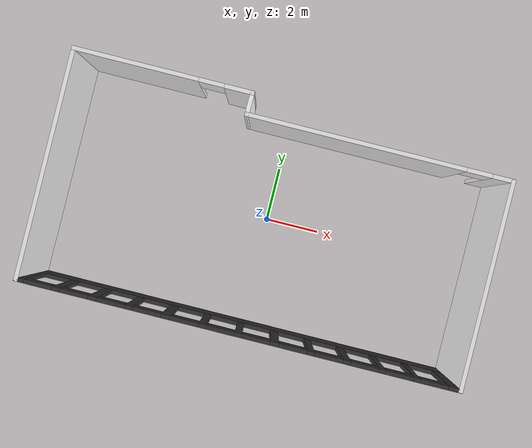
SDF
<sdf version='1.6'>
     <model name='lab_empty'>
      <pose frame=''>0.0 -0.0 0.01 0 -0 0</pose>
      <link name='Wall_10'>
        <pose frame=''>-4.66996 4.04955 0 0 -0 0</pose>
        <visual name='Wall_10_Visual_0'>
          <pose frame=''>-0.979064 0 1.5 0 -0 0</pose>
          <geometry>
            <box>
              <size>4.46087 0.15 3</size>
            </box>
          </geometry>
          <material>
          <script>
            <uri>file://final_project_world/materials/scripts</uri>
            <uri>file://final_project_world/materials/textures</uri>
            <name>Wall/Image</name>
          </script>
            <ambient>0.95 0.95 0.95 1</ambient>
          </material>
          <meta>
            <layer>0</layer>
          </meta>
        </visual>
        <collision name='Wall_10_Collision_0'>
          <geometry>
            <box>
              <size>4.46087 0.15 3</size>
            </box>
          </geometry>
          <pose frame=''>-0.979064 0 1.5 0 -0 0</pose>
          <max_contacts>10</max_contacts>
          <surface>
            <contact>
              <ode/>
            </contact>
            <bounce/>
            <friction>
              <torsional>
                <ode/>
              </torsional>
              <ode/>
            </friction>
          </surface>
        </collision>
        <visual name='Wall_10_Visual_1'>
          <pose frame=''>2.68044 0 1.5 0 -0 0</pose>
          <geometry>
            <box>
              <size>1.05813 0.15 3</size>
            </box>
          </geometry>
          <material>
          <script>
            <uri>file://final_project_world/materials/scripts</uri>
            <uri>file://final_project_world/materials/textures</uri>
            <name>Wall/Image</name>
          </script>
            <ambient>0.95 0.95 0.95 1</ambient>
          </material>
          <meta>
            <layer>0</layer>
          </meta>
        </visual>
        <collision name='Wall_10_Collision_1'>
          <geometry>
            <box>
              <size>1.05813 0.15 3</size>
            </box>
          </geometry>
          <pose frame=''>2.68044 0 1.5 0 -0 0</pose>
          <max_contacts>10</max_contacts>
          <surface>
            <contact>
              <ode/>
            </contact>
            <bounce/>
            <friction>
              <torsional>
                <ode/>
              </torsional>
              <ode/>
            </friction>
          </surface>
        </collision>
        <visual name='Wall_10_Visual_2'>
          <pose frame=''>1.70137 0 2.5 0 -0 0</pose>
          <geometry>
            <box>
              <size>0.9 0.15 1</size>
            </box>
          </geometry>
          <material>
          <script>
            <uri>file://final_project_world/materials/scripts</uri>
            <uri>file://final_project_world/materials/textures</uri>
            <name>Wall/Image</name>
          </script>
            <ambient>0.95 0.95 0.95 1</ambient>
          </material>
          <meta>
            <layer>0</layer>
          </meta>
        </visual>
        <collision name='Wall_10_Collision_2'>
          <geometry>
            <box>
              <size>0.9 0.15 1</size>
            </box>
          </geometry>
          <pose frame=''>1.70137 0 2.5 0 -0 0</pose>
          <max_contacts>10</max_contacts>
          <surface>
            <contact>
              <ode/>
            </contact>
            <bounce/>
            <friction>
              <torsional>
                <ode/>
              </torsional>
              <ode/>
            </friction>
          </surface>
        </collision>
        <self_collide>0</self_collide>
        <enable_wind>0</enable_wind>
        <kinematic>0</kinematic>
      </link>
      <link name='Wall_13'>
        <collision name='Wall_13_Collision'>
          <geometry>
            <box>
              <size>0.900067 0.15 3</size>
            </box>
          </geometry>
          <pose frame=''>0 0 1.5 0 -0 0</pose>
          <max_contacts>10</max_contacts>
          <surface>
            <contact>
              <ode/>
            </contact>
            <bounce/>
            <friction>
              <torsional>
                <ode/>
              </torsional>
              <ode/>
            </friction>
          </surface>
        </collision>
        <visual name='Wall_13_Visual'>
          <pose frame=''>0 0 1.5 0 -0 0</pose>
          <geometry>
            <box>
              <size>0.900067 0.15 3</size>
            </box>
          </geometry>
          <material>
          <script>
            <uri>file://final_project_world/materials/scripts</uri>
            <uri>file://final_project_world/materials/textures</uri>
            <name>Wall/Image</name>
          </script>
            <ambient>1 1 1 1</ambient>
          </material>
          <meta>
            <layer>0</layer>
          </meta>
        </visual>
        <pose frame=''>-1.54046 3.67455 0 0 -0 -1.58413</pose>
        <self_collide>0</self_collide>
        <enable_wind>0</enable_wind>
        <kinematic>0</kinematic>
      </link>
      <link name='Wall_15'>
        <pose frame=''>0.004542 -4.05046 0 0 -0 0</pose>
        <visual name='Wall_15_Visual_0'>
          <pose frame=''>-7.70321 0 1.5 0 -0 0</pose>
          <geometry>
            <box>
              <size>0.343585 0.15 3</size>
            </box>
          </geometry>
          <material>
          <script>
            <uri>file://final_project_world/materials/scripts</uri>
            <uri>file://final_project_world/materials/textures</uri>
            <name>Wall/Image</name>
          </script>
            <ambient>0.2 0.2 0.2 1</ambient>
          </material>
          <meta>
            <layer>0</layer>
          </meta>
        </visual>
        <collision name='Wall_15_Collision_0'>
          <geometry>
            <box>
              <size>0.343585 0.15 3</size>
            </box>
          </geometry>
          <pose frame=''>-7.70321 0 1.5 0 -0 0</pose>
          <max_contacts>10</max_contacts>
          <surface>
            <contact>
              <ode/>
            </contact>
            <bounce/>
            <friction>
              <torsional>
                <ode/>
              </torsional>
              <ode/>
            </friction>
          </surface>
        </collision>
        <visual name='Wall_15_Visual_1'>
          <pose frame=''>0.171792 0 0.4 0 -0 0</pose>
          <geometry>
            <box>
              <size>15.4064 0.15 0.8</size>
            </box>
          </geometry>
          <material>
          <script>
            <uri>file://final_project_world/materials/scripts</uri>
            <uri>file://final_project_world/materials/textures</uri>
            <name>Wall/Image</name>
          </script>
            <ambient>0.2 0.2 0.2 1</ambient>
          </material>
          <meta>
            <layer>0</layer>
          </meta>
        </visual>
        <collision name='Wall_15_Collision_1'>
          <geometry>
            <box>
              <size>15.4064 0.15 0.8</size>
            </box>
          </geometry>
          <pose frame=''>0.171792 0 0.4 0 -0 0</pose>
          <max_contacts>10</max_contacts>
          <surface>
            <contact>
              <ode/>
            </contact>
            <bounce/>
            <friction>
              <torsional>
                <ode/>
              </torsional>
              <ode/>
            </friction>
          </surface>
        </collision>
        <visual name='Wall_15_Visual_2'>
          <pose frame=''>-6.39989 0 1.9 0 -0 0</pose>
          <geometry>
            <box>
              <size>0.263044 0.15 2.2</size>
            </box>
          </geometry>
          <material>
          <script>
            <uri>file://final_project_world/materials/scripts</uri>
            <uri>file://final_project_world/materials/textures</uri>
            <name>Wall/Image</name>
          </script>
            <ambient>0.2 0.2 0.2 1</ambient>
          </material>
          <meta>
            <layer>0</layer>
          </meta>
        </visual>
        <collision name='Wall_15_Collision_2'>
          <geometry>
            <box>
              <size>0.263044 0.15 2.2</size>
            </box>
          </geometry>
          <pose frame=''>-6.39989 0 1.9 0 -0 0</pose>
          <max_contacts>10</max_contacts>
          <surface>
            <contact>
              <ode/>
            </contact>
            <bounce/>
            <friction>
              <torsional>
                <ode/>
              </torsional>
              <ode/>
            </friction>
          </surface>
        </collision>
        <visual name='Wall_15_Visual_3'>
          <pose frame=''>-5.12163 0 1.9 0 -0 0</pose>
          <geometry>
            <box>
              <size>0.293478 0.15 2.2</size>
            </box>
          </geometry>
          <material>
          <script>
            <uri>file://final_project_world/materials/scripts</uri>
            <uri>file://final_project_world/materials/textures</uri>
            <name>Wall/Image</name>
          </script>
            <ambient>0.2 0.2 0.2 1</ambient>
          </material>
          <meta>
            <layer>0</layer>
          </meta>
        </visual>
        <collision name='Wall_15_Collision_3'>
          <geometry>
            <box>
              <size>0.293478 0.15 2.2</size>
            </box>
          </geometry>
          <pose frame=''>-5.12163 0 1.9 0 -0 0</pose>
          <max_contacts>10</max_contacts>
          <surface>
            <contact>
              <ode/>
            </contact>
            <bounce/>
            <friction>
              <torsional>
                <ode/>
              </torsional>
              <ode/>
            </friction>
          </surface>
        </collision>
        <visual name='Wall_15_Visual_4'>
          <pose frame=''>-3.84337 0 1.9 0 -0 0</pose>
          <geometry>
            <box>
              <size>0.263043 0.15 2.2</size>
            </box>
          </geometry>
          <material>
          <script>
            <uri>file://final_project_world/materials/scripts</uri>
            <uri>file://final_project_world/materials/textures</uri>
            <name>Wall/Image</name>
          </script>
            <ambient>0.2 0.2 0.2 1</ambient>
          </material>
          <meta>
            <layer>0</layer>
          </meta>
        </visual>
        <collision name='Wall_15_Collision_4'>
          <geometry>
            <box>
              <size>0.263043 0.15 2.2</size>
            </box>
          </geometry>
          <pose frame=''>-3.84337 0 1.9 0 -0 0</pose>
          <max_contacts>10</max_contacts>
          <surface>
            <contact>
              <ode/>
            </contact>
            <bounce/>
            <friction>
              <torsional>
                <ode/>
              </torsional>
              <ode/>
            </friction>
          </surface>
        </collision>
        <visual name='Wall_15_Visual_5'>
          <pose frame=''>-2.5575 0 1.9 0 -0 0</pose>
          <geometry>
            <box>
              <size>0.308696 0.15 2.2</size>
            </box>
          </geometry>
          <material>
          <script>
            <uri>file://final_project_world/materials/scripts</uri>
            <uri>file://final_project_world/materials/textures</uri>
            <name>Wall/Image</name>
          </script>
            <ambient>0.2 0.2 0.2 1</ambient>
          </material>
          <meta>
            <layer>0</layer>
          </meta>
        </visual>
        <collision name='Wall_15_Collision_5'>
          <geometry>
            <box>
              <size>0.308696 0.15 2.2</size>
            </box>
          </geometry>
          <pose frame=''>-2.5575 0 1.9 0 -0 0</pose>
          <max_contacts>10</max_contacts>
          <surface>
            <contact>
              <ode/>
            </contact>
            <bounce/>
            <friction>
              <torsional>
                <ode/>
              </torsional>
              <ode/>
            </friction>
          </surface>
        </collision>
        <visual name='Wall_15_Visual_6'>
          <pose frame=''>-1.27163 0 1.9 0 -0 0</pose>
          <geometry>
            <box>
              <size>0.263044 0.15 2.2</size>
            </box>
          </geometry>
          <material>
          <script>
            <uri>file://final_project_world/materials/scripts</uri>
            <uri>file://final_project_world/materials/textures</uri>
            <name>Wall/Image</name>
          </script>
            <ambient>0.2 0.2 0.2 1</ambient>
          </material>
          <meta>
            <layer>0</layer>
          </meta>
        </visual>
        <collision name='Wall_15_Collision_6'>
          <geometry>
            <box>
              <size>0.263044 0.15 2.2</size>
            </box>
          </geometry>
          <pose frame=''>-1.27163 0 1.9 0 -0 0</pose>
          <max_contacts>10</max_contacts>
          <surface>
            <contact>
              <ode/>
            </contact>
            <bounce/>
            <friction>
              <torsional>
                <ode/>
              </torsional>
              <ode/>
            </friction>
          </surface>
        </collision>
        <visual name='Wall_15_Visual_7'>
          <pose frame=''>-0.008589 0 1.9 0 -0 0</pose>
          <geometry>
            <box>
              <size>0.263043 0.15 2.2</size>
            </box>
          </geometry>
          <material>
          <script>
            <uri>file://final_project_world/materials/scripts</uri>
            <uri>file://final_project_world/materials/textures</uri>
            <name>Wall/Image</name>
          </script>
            <ambient>0.2 0.2 0.2 1</ambient>
          </material>
          <meta>
            <layer>0</layer>
          </meta>
        </visual>
        <collision name='Wall_15_Collision_7'>
          <geometry>
            <box>
              <size>0.263043 0.15 2.2</size>
            </box>
          </geometry>
          <pose frame=''>-0.008589 0 1.9 0 -0 0</pose>
          <max_contacts>10</max_contacts>
          <surface>
            <contact>
              <ode/>
            </contact>
            <bounce/>
            <friction>
              <torsional>
                <ode/>
              </torsional>
              <ode/>
            </friction>
          </surface>
        </collision>
        <visual name='Wall_15_Visual_8'>
          <pose frame=''>1.26967 0 1.9 0 -0 0</pose>
          <geometry>
            <box>
              <size>0.293478 0.15 2.2</size>
            </box>
          </geometry>
          <material>
          <script>
            <uri>file://final_project_world/materials/scripts</uri>
            <uri>file://final_project_world/materials/textures</uri>
            <name>Wall/Image</name>
          </script>
            <ambient>0.2 0.2 0.2 1</ambient>
          </material>
          <meta>
            <layer>0</layer>
          </meta>
        </visual>
        <collision name='Wall_15_Collision_8'>
          <geometry>
            <box>
              <size>0.293478 0.15 2.2</size>
            </box>
          </geometry>
          <pose frame=''>1.26967 0 1.9 0 -0 0</pose>
          <max_contacts>10</max_contacts>
          <surface>
            <contact>
              <ode/>
            </contact>
            <bounce/>
            <friction>
              <torsional>
                <ode/>
              </torsional>
              <ode/>
            </friction>
          </surface>
        </collision>
        <visual name='Wall_15_Visual_9'>
          <pose frame=''>2.54032 0 1.9 0 -0 0</pose>
          <geometry>
            <box>
              <size>0.247826 0.15 2.2</size>
            </box>
          </geometry>
          <material>
          <script>
            <uri>file://final_project_world/materials/scripts</uri>
            <uri>file://final_project_world/materials/textures</uri>
            <name>Wall/Image</name>
          </script>
            <ambient>0.2 0.2 0.2 1</ambient>
          </material>
          <meta>
            <layer>0</layer>
          </meta>
        </visual>
        <collision name='Wall_15_Collision_9'>
          <geometry>
            <box>
              <size>0.247826 0.15 2.2</size>
            </box>
          </geometry>
          <pose frame=''>2.54032 0 1.9 0 -0 0</pose>
          <max_contacts>10</max_contacts>
          <surface>
            <contact>
              <ode/>
            </contact>
            <bounce/>
            <friction>
              <torsional>
                <ode/>
              </torsional>
              <ode/>
            </friction>
          </surface>
        </collision>
        <visual name='Wall_15_Visual_10'>
          <pose frame=''>3.80337 0 1.9 0 -0 0</pose>
          <geometry>
            <box>
              <size>0.278261 0.15 2.2</size>
            </box>
          </geometry>
          <material>
          <script>
            <uri>file://final_project_world/materials/scripts</uri>
            <uri>file://final_project_world/materials/textures</uri>
            <name>Wall/Image</name>
          </script>
            <ambient>0.2 0.2 0.2 1</ambient>
          </material>
          <meta>
            <layer>0</layer>
          </meta>
        </visual>
        <collision name='Wall_15_Collision_10'>
          <geometry>
            <box>
              <size>0.278261 0.15 2.2</size>
            </box>
          </geometry>
          <pose frame=''>3.80337 0 1.9 0 -0 0</pose>
          <max_contacts>10</max_contacts>
          <surface>
            <contact>
              <ode/>
            </contact>
            <bounce/>
            <friction>
              <torsional>
                <ode/>
              </torsional>
              <ode/>
            </friction>
          </surface>
        </collision>
        <visual name='Wall_15_Visual_11'>
          <pose frame=''>5.05119 0 1.9 0 -0 0</pose>
          <geometry>
            <box>
              <size>0.217391 0.15 2.2</size>
            </box>
          </geometry>
          <material>
          <script>
            <uri>file://final_project_world/materials/scripts</uri>
            <uri>file://final_project_world/materials/textures</uri>
            <name>Wall/Image</name>
          </script>
            <ambient>0.2 0.2 0.2 1</ambient>
          </material>
          <meta>
            <layer>0</layer>
          </meta>
        </visual>
        <collision name='Wall_15_Collision_11'>
          <geometry>
            <box>
              <size>0.217391 0.15 2.2</size>
            </box>
          </geometry>
          <pose frame=''>5.05119 0 1.9 0 -0 0</pose>
          <max_contacts>10</max_contacts>
          <surface>
            <contact>
              <ode/>
            </contact>
            <bounce/>
            <friction>
              <torsional>
                <ode/>
              </torsional>
              <ode/>
            </friction>
          </surface>
        </collision>
        <visual name='Wall_15_Visual_12'>
          <pose frame=''>6.26858 0 1.9 0 -0 0</pose>
          <geometry>
            <box>
              <size>0.217391 0.15 2.2</size>
            </box>
          </geometry>
          <material>
          <script>
            <uri>file://final_project_world/materials/scripts</uri>
            <uri>file://final_project_world/materials/textures</uri>
            <name>Wall/Image</name>
          </script>
            <ambient>0.2 0.2 0.2 1</ambient>
          </material>
          <meta>
            <layer>0</layer>
          </meta>
        </visual>
        <collision name='Wall_15_Collision_12'>
          <geometry>
            <box>
              <size>0.217391 0.15 2.2</size>
            </box>
          </geometry>
          <pose frame=''>6.26858 0 1.9 0 -0 0</pose>
          <max_contacts>10</max_contacts>
          <surface>
            <contact>
              <ode/>
            </contact>
            <bounce/>
            <friction>
              <torsional>
                <ode/>
              </torsional>
              <ode/>
            </friction>
          </surface>
        </collision>
        <visual name='Wall_15_Visual_13'>
          <pose frame=''>7.62614 0 1.9 0 -0 0</pose>
          <geometry>
            <box>
              <size>0.497719 0.15 2.2</size>
            </box>
          </geometry>
          <material>
          <script>
            <uri>file://final_project_world/materials/scripts</uri>
            <uri>file://final_project_world/materials/textures</uri>
            <name>Wall/Image</name>
          </script>
            <ambient>0.2 0.2 0.2 1</ambient>
          </material>
          <meta>
            <layer>0</layer>
          </meta>
        </visual>
        <collision name='Wall_15_Collision_13'>
          <geometry>
            <box>
              <size>0.497719 0.15 2.2</size>
            </box>
          </geometry>
          <pose frame=''>7.62614 0 1.9 0 -0 0</pose>
          <max_contacts>10</max_contacts>
          <surface>
            <contact>
              <ode/>
            </contact>
            <bounce/>
            <friction>
              <torsional>
                <ode/>
              </torsional>
              <ode/>
            </friction>
          </surface>
        </collision>
        <visual name='Wall_15_Visual_14'>
          <pose frame=''>-7.03141 0 2.8 0 -0 0</pose>
          <geometry>
            <box>
              <size>1 0.15 0.4</size>
            </box>
          </geometry>
          <material>
          <script>
            <uri>file://final_project_world/materials/scripts</uri>
            <uri>file://final_project_world/materials/textures</uri>
            <name>Wall/Image</name>
          </script>
            <ambient>0.2 0.2 0.2 1</ambient>
          </material>
          <meta>
            <layer>0</layer>
          </meta>
        </visual>
        <collision name='Wall_15_Collision_14'>
          <geometry>
            <box>
              <size>1 0.15 0.4</size>
            </box>
          </geometry>
          <pose frame=''>-7.03141 0 2.8 0 -0 0</pose>
          <max_contacts>10</max_contacts>
          <surface>
            <contact>
              <ode/>
            </contact>
            <bounce/>
            <friction>
              <torsional>
                <ode/>
              </torsional>
              <ode/>
            </friction>
          </surface>
        </collision>
        <visual name='Wall_15_Visual_15'>
          <pose frame=''>-5.76837 0 2.8 0 -0 0</pose>
          <geometry>
            <box>
              <size>1 0.15 0.4</size>
            </box>
          </geometry>
          <material>
          <script>
            <uri>file://final_project_world/materials/scripts</uri>
            <uri>file://final_project_world/materials/textures</uri>
            <name>Wall/Image</name>
          </script>
            <ambient>0.2 0.2 0.2 1</ambient>
          </material>
          <meta>
            <layer>0</layer>
          </meta>
        </visual>
        <collision name='Wall_15_Collision_15'>
          <geometry>
            <box>
              <size>1 0.15 0.4</size>
            </box>
          </geometry>
          <pose frame=''>-5.76837 0 2.8 0 -0 0</pose>
          <max_contacts>10</max_contacts>
          <surface>
            <contact>
              <ode/>
            </contact>
            <bounce/>
            <friction>
              <torsional>
                <ode/>
              </torsional>
              <ode/>
            </friction>
          </surface>
        </collision>
        <visual name='Wall_15_Visual_16'>
          <pose frame=''>-4.47489 0 2.8 0 -0 0</pose>
          <geometry>
            <box>
              <size>1 0.15 0.4</size>
            </box>
          </geometry>
          <material>
          <script>
            <uri>file://final_project_world/materials/scripts</uri>
            <uri>file://final_project_world/materials/textures</uri>
            <name>Wall/Image</name>
          </script>
            <ambient>0.2 0.2 0.2 1</ambient>
          </material>
          <meta>
            <layer>0</layer>
          </meta>
        </visual>
        <collision name='Wall_15_Collision_16'>
          <geometry>
            <box>
              <size>1 0.15 0.4</size>
            </box>
          </geometry>
          <pose frame=''>-4.47489 0 2.8 0 -0 0</pose>
          <max_contacts>10</max_contacts>
          <surface>
            <contact>
              <ode/>
            </contact>
            <bounce/>
            <friction>
              <torsional>
                <ode/>
              </torsional>
              <ode/>
            </friction>
          </surface>
        </collision>
        <visual name='Wall_15_Visual_17'>
          <pose frame=''>-3.21185 0 2.8 0 -0 0</pose>
          <geometry>
            <box>
              <size>1 0.15 0.4</size>
            </box>
          </geometry>
          <material>
          <script>
            <uri>file://final_project_world/materials/scripts</uri>
            <uri>file://final_project_world/materials/textures</uri>
            <name>Wall/Image</name>
          </script>
            <ambient>0.2 0.2 0.2 1</ambient>
          </material>
          <meta>
            <layer>0</layer>
          </meta>
        </visual>
        <collision name='Wall_15_Collision_17'>
          <geometry>
            <box>
              <size>1 0.15 0.4</size>
            </box>
          </geometry>
          <pose frame=''>-3.21185 0 2.8 0 -0 0</pose>
          <max_contacts>10</max_contacts>
          <surface>
            <contact>
              <ode/>
            </contact>
            <bounce/>
            <friction>
              <torsional>
                <ode/>
              </torsional>
              <ode/>
            </friction>
          </surface>
        </collision>
        <visual name='Wall_15_Visual_18'>
          <pose frame=''>-1.90315 0 2.8 0 -0 0</pose>
          <geometry>
            <box>
              <size>1 0.15 0.4</size>
            </box>
          </geometry>
          <material>
          <script>
            <uri>file://final_project_world/materials/scripts</uri>
            <uri>file://final_project_world/materials/textures</uri>
            <name>Wall/Image</name>
          </script>
            <ambient>0.2 0.2 0.2 1</ambient>
          </material>
          <meta>
            <layer>0</layer>
          </meta>
        </visual>
        <collision name='Wall_15_Collision_18'>
          <geometry>
            <box>
              <size>1 0.15 0.4</size>
            </box>
          </geometry>
          <pose frame=''>-1.90315 0 2.8 0 -0 0</pose>
          <max_contacts>10</max_contacts>
          <surface>
            <contact>
              <ode/>
            </contact>
            <bounce/>
            <friction>
              <torsional>
                <ode/>
              </torsional>
              <ode/>
            </friction>
          </surface>
        </collision>
        <visual name='Wall_15_Visual_19'>
          <pose frame=''>-0.640111 0 2.8 0 -0 0</pose>
          <geometry>
            <box>
              <size>1 0.15 0.4</size>
            </box>
          </geometry>
          <material>
          <script>
            <uri>file://final_project_world/materials/scripts</uri>
            <uri>file://final_project_world/materials/textures</uri>
            <name>Wall/Image</name>
          </script>
            <ambient>0.2 0.2 0.2 1</ambient>
          </material>
          <meta>
            <layer>0</layer>
          </meta>
        </visual>
        <collision name='Wall_15_Collision_19'>
          <geometry>
            <box>
              <size>1 0.15 0.4</size>
            </box>
          </geometry>
          <pose frame=''>-0.640111 0 2.8 0 -0 0</pose>
          <max_contacts>10</max_contacts>
          <surface>
            <contact>
              <ode/>
            </contact>
            <bounce/>
            <friction>
              <torsional>
                <ode/>
              </torsional>
              <ode/>
            </friction>
          </surface>
        </collision>
        <visual name='Wall_15_Visual_20'>
          <pose frame=''>0.622933 0 2.8 0 -0 0</pose>
          <geometry>
            <box>
              <size>1 0.15 0.4</size>
            </box>
          </geometry>
          <material>
          <script>
            <uri>file://final_project_world/materials/scripts</uri>
            <uri>file://final_project_world/materials/textures</uri>
            <name>Wall/Image</name>
          </script>
            <ambient>0.2 0.2 0.2 1</ambient>
          </material>
          <meta>
            <layer>0</layer>
          </meta>
        </visual>
        <collision name='Wall_15_Collision_20'>
          <geometry>
            <box>
              <size>1 0.15 0.4</size>
            </box>
          </geometry>
          <pose frame=''>0.622933 0 2.8 0 -0 0</pose>
          <max_contacts>10</max_contacts>
          <surface>
            <contact>
              <ode/>
            </contact>
            <bounce/>
            <friction>
              <torsional>
                <ode/>
              </torsional>
              <ode/>
            </friction>
          </surface>
        </collision>
        <visual name='Wall_15_Visual_21'>
          <pose frame=''>1.91641 0 2.8 0 -0 0</pose>
          <geometry>
            <box>
              <size>1 0.15 0.4</size>
            </box>
          </geometry>
          <material>
          <script>
            <uri>file://final_project_world/materials/scripts</uri>
            <uri>file://final_project_world/materials/textures</uri>
            <name>Wall/Image</name>
          </script>
            <ambient>0.2 0.2 0.2 1</ambient>
          </material>
          <meta>
            <layer>0</layer>
          </meta>
        </visual>
        <collision name='Wall_15_Collision_21'>
          <geometry>
            <box>
              <size>1 0.15 0.4</size>
            </box>
          </geometry>
          <pose frame=''>1.91641 0 2.8 0 -0 0</pose>
          <max_contacts>10</max_contacts>
          <surface>
            <contact>
              <ode/>
            </contact>
            <bounce/>
            <friction>
              <torsional>
                <ode/>
              </torsional>
              <ode/>
            </friction>
          </surface>
        </collision>
        <visual name='Wall_15_Visual_22'>
          <pose frame=''>3.16424 0 2.8 0 -0 0</pose>
          <geometry>
            <box>
              <size>1 0.15 0.4</size>
            </box>
          </geometry>
          <material>
          <script>
            <uri>file://final_project_world/materials/scripts</uri>
            <uri>file://final_project_world/materials/textures</uri>
            <name>Wall/Image</name>
          </script>
            <ambient>0.2 0.2 0.2 1</ambient>
          </material>
          <meta>
            <layer>0</layer>
          </meta>
        </visual>
        <collision name='Wall_15_Collision_22'>
          <geometry>
            <box>
              <size>1 0.15 0.4</size>
            </box>
          </geometry>
          <pose frame=''>3.16424 0 2.8 0 -0 0</pose>
          <max_contacts>10</max_contacts>
          <surface>
            <contact>
              <ode/>
            </contact>
            <bounce/>
            <friction>
              <torsional>
                <ode/>
              </torsional>
              <ode/>
            </friction>
          </surface>
        </collision>
        <visual name='Wall_15_Visual_23'>
          <pose frame=''>4.4425 0 2.8 0 -0 0</pose>
          <geometry>
            <box>
              <size>1 0.15 0.4</size>
            </box>
          </geometry>
          <material>
          <script>
            <uri>file://final_project_world/materials/scripts</uri>
            <uri>file://final_project_world/materials/textures</uri>
            <name>Wall/Image</name>
          </script>
            <ambient>0.2 0.2 0.2 1</ambient>
          </material>
          <meta>
            <layer>0</layer>
          </meta>
        </visual>
        <collision name='Wall_15_Collision_23'>
          <geometry>
            <box>
              <size>1 0.15 0.4</size>
            </box>
          </geometry>
          <pose frame=''>4.4425 0 2.8 0 -0 0</pose>
          <max_contacts>10</max_contacts>
          <surface>
            <contact>
              <ode/>
            </contact>
            <bounce/>
            <friction>
              <torsional>
                <ode/>
              </torsional>
              <ode/>
            </friction>
          </surface>
        </collision>
        <visual name='Wall_15_Visual_24'>
          <pose frame=''>5.65989 0 2.8 0 -0 0</pose>
          <geometry>
            <box>
              <size>1 0.15 0.4</size>
            </box>
          </geometry>
          <material>
          <script>
            <uri>file://final_project_world/materials/scripts</uri>
            <uri>file://final_project_world/materials/textures</uri>
            <name>Wall/Image</name>
          </script>
            <ambient>0.2 0.2 0.2 1</ambient>
          </material>
          <meta>
            <layer>0</layer>
          </meta>
        </visual>
        <collision name='Wall_15_Collision_24'>
          <geometry>
            <box>
              <size>1 0.15 0.4</size>
            </box>
          </geometry>
          <pose frame=''>5.65989 0 2.8 0 -0 0</pose>
          <max_contacts>10</max_contacts>
          <surface>
            <contact>
              <ode/>
            </contact>
            <bounce/>
            <friction>
              <torsional>
                <ode/>
              </torsional>
              <ode/>
            </friction>
          </surface>
        </collision>
        <visual name='Wall_15_Visual_25'>
          <pose frame=''>6.87728 0 2.8 0 -0 0</pose>
          <geometry>
            <box>
              <size>1 0.15 0.4</size>
            </box>
          </geometry>
          <material>
          <script>
            <uri>file://final_project_world/materials/scripts</uri>
            <uri>file://final_project_world/materials/textures</uri>
            <name>Wall/Image</name>
          </script>
            <ambient>0.2 0.2 0.2 1</ambient>
          </material>
          <meta>
            <layer>0</layer>
          </meta>
        </visual>
        <collision name='Wall_15_Collision_25'>
          <geometry>
            <box>
              <size>1 0.15 0.4</size>
            </box>
          </geometry>
          <pose frame=''>6.87728 0 2.8 0 -0 0</pose>
          <max_contacts>10</max_contacts>
          <surface>
            <contact>
              <ode/>
            </contact>
            <bounce/>
            <friction>
              <torsional>
                <ode/>
              </torsional>
              <ode/>
            </friction>
          </surface>
        </collision>
        <self_collide>0</self_collide>
        <enable_wind>0</enable_wind>
        <kinematic>0</kinematic>
      </link>
      <link name='Wall_17'>
        <collision name='Wall_17_Collision'>
          <geometry>
            <box>
              <size>8.25 0.15 3</size>
            </box>
          </geometry>
          <pose frame=''>0 0 1.5 0 -0 0</pose>
          <max_contacts>10</max_contacts>
          <surface>
            <contact>
              <ode/>
            </contact>
            <bounce/>
            <friction>
              <torsional>
                <ode/>
              </torsional>
              <ode/>
            </friction>
          </surface>
        </collision>
        <visual name='Wall_17_Visual'>
          <pose frame=''>0 0 1.5 0 -0 0</pose>
          <geometry>
            <box>
              <size>8.25 0.15 3</size>
            </box>
          </geometry>
          <material>
          <script>
            <uri>file://final_project_world/materials/scripts</uri>
            <uri>file://final_project_world/materials/textures</uri>
            <name>Wall/Image</name>
          </script>
            <ambient>0.95 0.95 0.95 1</ambient>
          </material>
          <meta>
            <layer>0</layer>
          </meta>
        </visual>
        <pose frame=''>-7.79996 -0.000455 0 0 -0 -1.56968</pose>
        <self_collide>0</self_collide>
        <enable_wind>0</enable_wind>
        <kinematic>0</kinematic>
      </link>
      <link name='Wall_2'>
        <collision name='Wall_2_Collision'>
          <geometry>
            <box>
              <size>7.5 0.15 3</size>
            </box>
          </geometry>
          <pose frame=''>0 0 1.5 0 -0 0</pose>
          <max_contacts>10</max_contacts>
          <surface>
            <contact>
              <ode/>
            </contact>
            <bounce/>
            <friction>
              <torsional>
                <ode/>
              </torsional>
              <ode/>
            </friction>
          </surface>
        </collision>
        <visual name='Wall_2_Visual'>
          <pose frame=''>0 0 1.5 0 -0 0</pose>
          <geometry>
            <box>
              <size>7.5 0.15 3</size>
            </box>
          </geometry>
          <material>
          <script>
            <uri>file://final_project_world/materials/scripts</uri>
            <uri>file://final_project_world/materials/textures</uri>
            <name>Wall/Image</name>
          </script>
            <ambient>0.95 0.95 0.95 1</ambient>
          </material>
          <meta>
            <layer>0</layer>
          </meta>
        </visual>
        <pose frame=''>7.80454 -0.375455 0 0 -0 1.5708</pose>
        <self_collide>0</self_collide>
        <enable_wind>0</enable_wind>
        <kinematic>0</kinematic>
      </link>
      <link name='Wall_3'>
        <pose frame=''>3.12954 3.29955 0 0 -0 3.14159</pose>
        <visual name='Wall_3_Visual_0'>
          <pose frame=''>-4.346 0 1.5 0 -0 0</pose>
          <geometry>
            <box>
              <size>0.808 0.15 3</size>
            </box>
          </geometry>
          <material>
          <script>
            <uri>file://final_project_world/materials/scripts</uri>
            <uri>file://final_project_world/materials/textures</uri>
            <name>Wall/Image</name>
          </script>
            <ambient>0.95 0.95 0.95 1</ambient>
          </material>
          <meta>
            <layer>0</layer>
          </meta>
        </visual>
        <collision name='Wall_3_Collision_0'>
          <geometry>
            <box>
              <size>0.808 0.15 3</size>
            </box>
          </geometry>
          <pose frame=''>-4.346 0 1.5 0 -0 0</pose>
          <max_contacts>10</max_contacts>
          <surface>
            <contact>
              <ode/>
            </contact>
            <bounce/>
            <friction>
              <torsional>
                <ode/>
              </torsional>
              <ode/>
            </friction>
          </surface>
        </collision>
        <visual name='Wall_3_Visual_1'>
          <pose frame=''>0.854 0 1.5 0 -0 0</pose>
          <geometry>
            <box>
              <size>7.792 0.15 3</size>
            </box>
          </geometry>
          <material>
          <script>
            <uri>file://final_project_world/materials/scripts</uri>
            <uri>file://final_project_world/materials/textures</uri>
            <name>Wall/Image</name>
          </script>
            <ambient>0.95 0.95 0.95 1</ambient>
          </material>
          <meta>
            <layer>0</layer>
          </meta>
        </visual>
        <collision name='Wall_3_Collision_1'>
          <geometry>
            <box>
              <size>7.792 0.15 3</size>
            </box>
          </geometry>
          <pose frame=''>0.854 0 1.5 0 -0 0</pose>
          <max_contacts>10</max_contacts>
          <surface>
            <contact>
              <ode/>
            </contact>
            <bounce/>
            <friction>
              <torsional>
                <ode/>
              </torsional>
              <ode/>
            </friction>
          </surface>
        </collision>
        <visual name='Wall_3_Visual_2'>
          <pose frame=''>-3.492 0 2.5 0 -0 0</pose>
          <geometry>
            <box>
              <size>0.9 0.15 1</size>
            </box>
          </geometry>
          <material>
          <script>
            <uri>file://final_project_world/materials/scripts</uri>
            <uri>file://final_project_world/materials/textures</uri>
            <name>Wall/Image</name>
          </script>
            <ambient>0.95 0.95 0.95 1</ambient>
          </material>
          <meta>
            <layer>0</layer>
          </meta>
        </visual>
        <collision name='Wall_3_Collision_2'>
          <geometry>
            <box>
              <size>0.9 0.15 1</size>
            </box>
          </geometry>
          <pose frame=''>-3.492 0 2.5 0 -0 0</pose>
          <max_contacts>10</max_contacts>
          <surface>
            <contact>
              <ode/>
            </contact>
            <bounce/>
            <friction>
              <torsional>
                <ode/>
              </torsional>
              <ode/>
            </friction>
          </surface>
        </collision>
        <self_collide>0</self_collide>
        <enable_wind>0</enable_wind>
        <kinematic>0</kinematic>
      </link>
      <static>1</static>
    </model>

</sdf>
